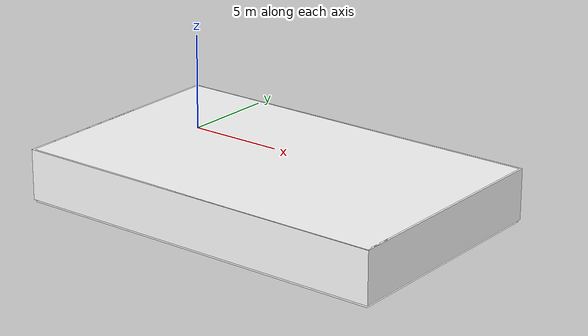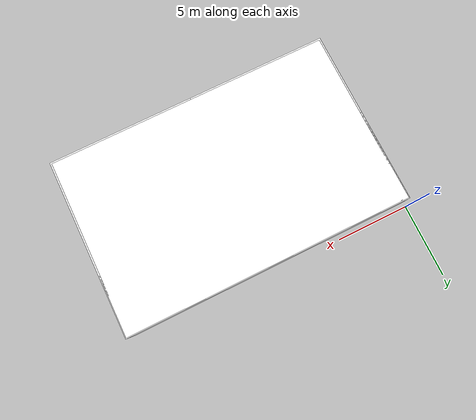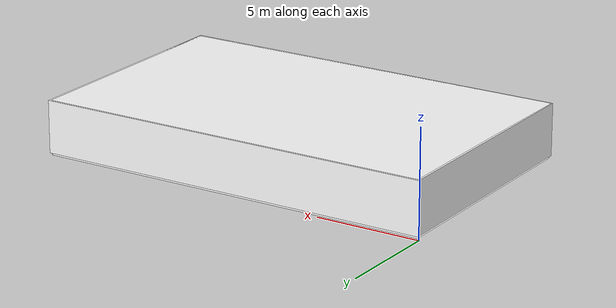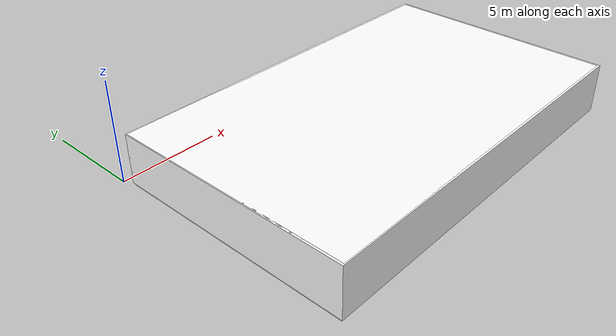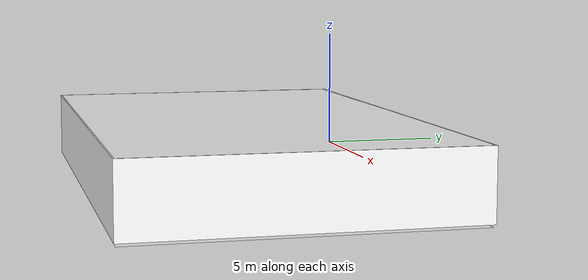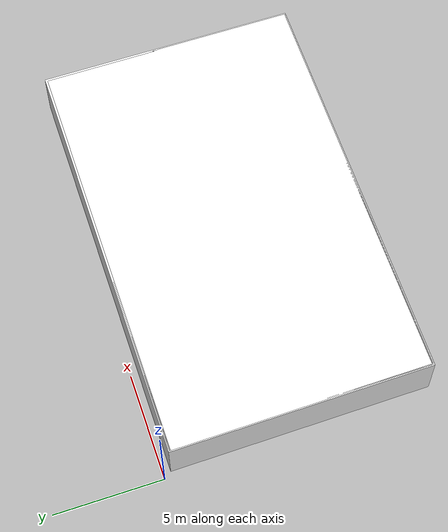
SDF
<?xml version='1.0' encoding='utf-8'?>
<sdf version="1.7">
  <model name="warehouse_L1">
    <static>true</static>
    <link name="floor_1">
      <visual name="visual">
        <geometry>
          <mesh>
            <uri>model://warehouse_L1/meshes/floor_1.obj</uri>
          </mesh>
        </geometry>
        <material>
          <diffuse>1.0 1.0 1.0</diffuse>
          <specular>0.1 0.1 0.1</specular>
          <pbr>
            <metal>
              <metalness>0.0</metalness>
              <albedo_map>model://warehouse_L1/meshes/blue_linoleum.png</albedo_map>
            </metal>
          </pbr>
          <script>
            <uri>model://warehouse_L1/meshes/</uri>
            <name>floor_1_Diffuse</name>
          </script>
        </material>
      </visual>
      <collision name="collision">
        <geometry>
          <mesh>
            <uri>model://warehouse_L1/meshes/floor_1.obj</uri>
          </mesh>
        </geometry>
        <surface>
          <contact>
            <collide_bitmask>0x01</collide_bitmask>
          </contact>
        </surface>
      </collision>
    </link>
    <link name="ceiling_1">
      <visual name="visual">
        <geometry>
          <mesh>
            <uri>model://warehouse_L1/meshes/ceiling_1.obj</uri>
          </mesh>
        </geometry>
        <material>
          <diffuse>1.0 1.0 1.0</diffuse>
          <specular>0.1 0.1 0.1</specular>
          <pbr>
            <metal>
              <metalness>0.0</metalness>
              <albedo_map>model://warehouse_L1/meshes/blue_linoleum.png</albedo_map>
            </metal>
          </pbr>
          <script>
            <uri>model://warehouse_L1/meshes/</uri>
            <name>ceiling_1_Diffuse</name>
          </script>
        </material>
      </visual>
      <collision name="collision">
        <geometry>
          <mesh>
            <uri>model://warehouse_L1/meshes/ceiling_1.obj</uri>
          </mesh>
        </geometry>
        <surface>
          <contact>
            <collide_bitmask>0x01</collide_bitmask>
          </contact>
        </surface>
      </collision>
    </link>
    <link name="wall_1">
      <visual name="wall_1">
        <geometry>
          <mesh>
            <uri>model://warehouse_L1/meshes/wall_1.obj</uri>
          </mesh>
        </geometry>
        <transparency>0.0</transparency>
        <material>
          <diffuse>1.0 1.0 1.0</diffuse>
          <specular>0.1 0.1 0.1</specular>
          <pbr>
            <metal>
              <metalness>0.0</metalness>
              <albedo_map>model://warehouse_L1/meshes/default.png</albedo_map>
            </metal>
          </pbr>
          <script>
            <uri>model://warehouse_L1/meshes/</uri>
            <name>wall_1_Diffuse</name>
          </script>
        </material>
      </visual>
      <collision name="collision">
        <geometry>
          <mesh>
            <uri>model://warehouse_L1/meshes/wall_1.obj</uri>
          </mesh>
        </geometry>
        <surface>
          <contact>
            <collide_bitmask>0x01</collide_bitmask>
          </contact>
        </surface>
      </collision>
      <pose>0.25955417300302425 -12.326608986270795 0 0 0 0</pose>
    </link>
  </model>
</sdf>
